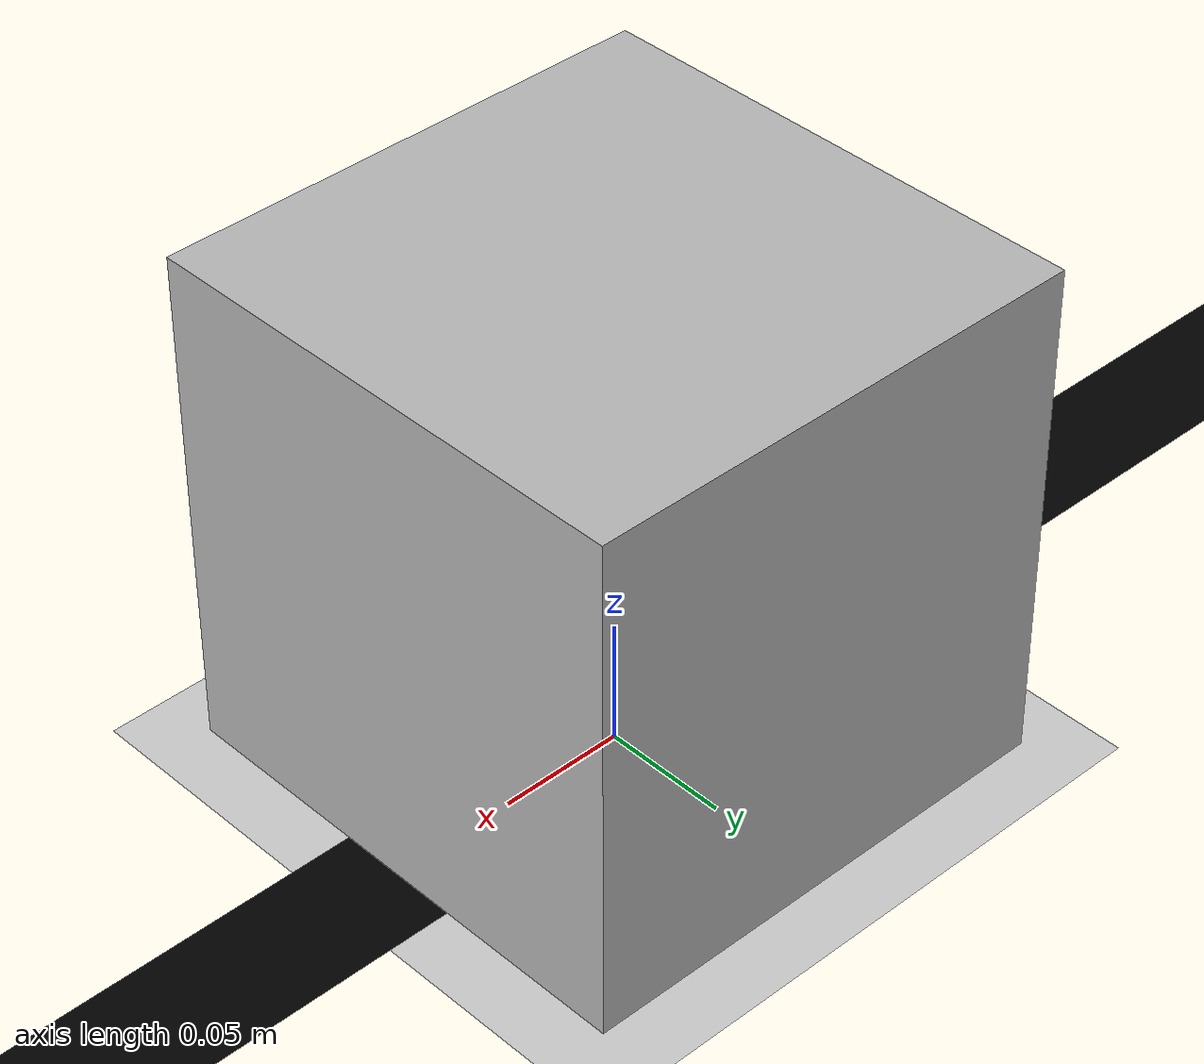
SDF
<?xml version="1.0"?>
<sdf version="1.6">
    <world name="null_loop_world">
        <light name="sun" type="directional">
            <pose>0 0 30 0.5 0 0 0</pose>
            <cast_shadows>1</cast_shadows>
            <diffuse>0.8 0.8 0.8 1</diffuse>
            <specular>0.1 0.1 0.1 1</specular>
            <attenuation>
                <range>100</range>
            </attenuation>
            <direction>-0.5 0.5 -1</direction>
        </light>

        <physics name='default_physics' default='0' type='ode'>
      <max_step_size>0.001</max_step_size>
      <real_time_factor>1</real_time_factor>
      <real_time_update_rate>1000</real_time_update_rate>
    </physics>

        <gravity>0 0 -9.8</gravity>

        <scene>
            <ambient>1 1 1 1</ambient>
            <background>0.2 0.0 0.2 1</background>
            <shadows>1</shadows>
            <grid>0</grid>
        </scene>

        <include>
            <uri>model://empty_ground_plane</uri>
            <pose>0 0 -0.001 0 0 0</pose>
        </include>

        <!-- create the map -->
        <include>
            <uri>model://null_track</uri>
        </include>

        <model name="Tag0">
            <pose>0 0 0.1 0 0 0</pose>
            <link name="Tag-0">
            <collision name="collision">
                <geometry>
                <box>
                    <size>.2 .2 .2</size>
                </box>
                </geometry>
            </collision>
            <visual name="visual">
                <geometry>
                <box>
                    <size>.2 .2 .2</size>
                </box>
                </geometry>
                <material>
                <script>
                    <uri>model://Tags/Tag-0/scripts</uri>
                    <uri>model://Tags/Tag-0/textures</uri>
                    <name>Tag0</name>
                </script>
                </material>
            </visual>
            </link>

            <plugin name="push_animate" filename="libnull_loop.so"/>
        </model>
    </world>
</sdf>

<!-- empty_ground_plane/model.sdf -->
<sdf version="1.6">
    <model name="empty_ground_plane">
        <static>true</static>
        <link name="link">
            <collision name="collision">
                <geometry>
                    <plane>
                        <normal>0 0 1</normal>
                        <size>100 100</size>
                    </plane>
                </geometry>
                <surface>
                    <friction>
                        <ode>
                            <mu>100</mu>
                            <mu2>50</mu2>
                        </ode>
                    </friction>
                </surface>
            </collision>

            <visual name="visual">
                <cast_shadows>false</cast_shadows>
                <geometry>
                    <plane>
                        <normal>0 0 1</normal>
                        <size>100 100</size>
                    </plane>
                </geometry>
                <material>
                    <script>
                        <uri>model://empty_ground_plane/materials/scripts/</uri>
                        <uri>model://empty_ground_plane/materials/textures</uri>
                        <name>EmptyGroundPlane/Image</name>
                    </script>
                </material>
            </visual>
        </link>
    </model>
</sdf>

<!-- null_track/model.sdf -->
<sdf version="1.6">
    <model name="null_track">
        <static>true</static>
        <link name="link">
            <visual name="visual">
                <cast_shadows>false</cast_shadows>
                <geometry>
                    <mesh>
                        <uri>model://null_track/meshes/null_track.dae</uri>
                        <scale>1 1 1</scale>
                    </mesh>
                </geometry>
            </visual>
        </link>
    </model>
</sdf>
